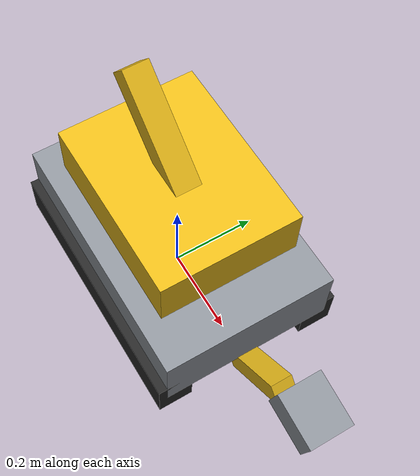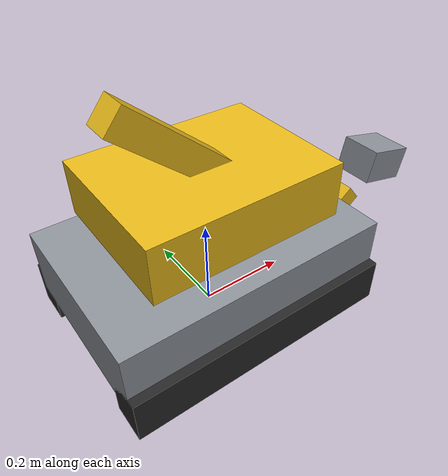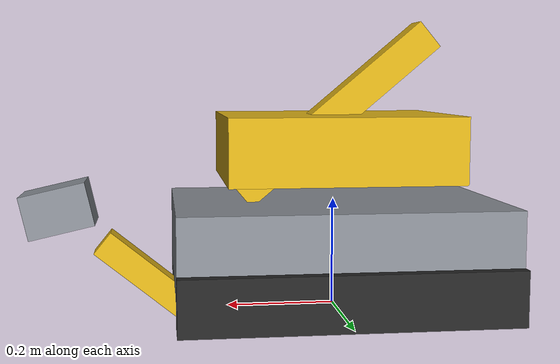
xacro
<?xml version="1.0"?>
<robot name="excavator" xmlns:xacro="http://www.ros.org/wiki/xacro">

  <!-- ==== MEASURE: chassis ==== -->
  <xacro:property name="chassis_length" value="0.60"/>   <!-- MEASURE m -->
  <xacro:property name="chassis_width"  value="0.40"/>   <!-- MEASURE m -->
  <xacro:property name="chassis_height" value="0.15"/>   <!-- MEASURE m -->
  <xacro:property name="ground_clearance" value="0.05"/> <!-- MEASURE m -->

  <!-- ==== MEASURE: tracks ==== -->
  <xacro:property name="track_length" value="0.60"/>     <!-- MEASURE m -->
  <xacro:property name="track_width"  value="0.08"/>     <!-- MEASURE m -->
  <xacro:property name="track_height" value="0.10"/>     <!-- MEASURE m -->
  <xacro:property name="track_separation" value="0.36"/> <!-- MEASURE m, centre-to-centre. Used by track odometry. -->

  <!-- ==== MEASURE: cab / swingdrive ==== -->
  <xacro:property name="cab_height" value="0.12"/>       <!-- MEASURE m -->
  <xacro:property name="cab_z_offset" value="0.10"/>     <!-- MEASURE m, chassis top to cab base -->

  <!-- ==== Arm: these are known (excavator_kinematics, cm -> m) ==== -->
  <xacro:property name="boom_length"   value="0.46"/>
  <xacro:property name="stick_length"  value="0.20"/>
  <xacro:property name="bucket_length" value="0.12"/>

  <!-- ==== MEASURE: camera mount, relative to cab_link ==== -->
  <xacro:property name="cam_x"     value="0.20"/>        <!-- MEASURE m, forward -->
  <xacro:property name="cam_y"     value="0.00"/>        <!-- MEASURE m, lateral -->
  <xacro:property name="cam_z"     value="0.25"/>        <!-- MEASURE m, up -->
  <xacro:property name="cam_pitch" value="0.26"/>        <!-- MEASURE rad, + = tilted DOWN. ~15 deg placeholder. -->

  <material name="steel"><color rgba="0.55 0.57 0.60 1.0"/></material>
  <material name="track_rubber"><color rgba="0.15 0.15 0.15 1.0"/></material>
  <material name="yellow"><color rgba="0.90 0.72 0.10 1.0"/></material>

  <xacro:macro name="box_link" params="name x y z material">
    <link name="${name}">
      <visual>
        <geometry><box size="${x} ${y} ${z}"/></geometry>
        <material name="${material}"/>
      </visual>
      <collision>
        <geometry><box size="${x} ${y} ${z}"/></geometry>
      </collision>
    </link>
  </xacro:macro>

  <!-- ============ base ============ -->
  <link name="base_footprint"/>

  <xacro:box_link name="base_link" x="${chassis_length}" y="${chassis_width}"
                  z="${chassis_height}" material="steel"/>

  <joint name="base_footprint_to_base_link" type="fixed">
    <parent link="base_footprint"/>
    <child  link="base_link"/>
    <origin xyz="0 0 ${ground_clearance + chassis_height/2}" rpy="0 0 0"/>
  </joint>

  <!-- ============ tracks ============ -->
  <xacro:box_link name="left_track_link" x="${track_length}" y="${track_width}"
                  z="${track_height}" material="track_rubber"/>
  <joint name="base_to_left_track" type="fixed">
    <parent link="base_link"/>
    <child  link="left_track_link"/>
    <origin xyz="0 ${track_separation/2} ${-chassis_height/2}" rpy="0 0 0"/>
  </joint>

  <xacro:box_link name="right_track_link" x="${track_length}" y="${track_width}"
                  z="${track_height}" material="track_rubber"/>
  <joint name="base_to_right_track" type="fixed">
    <parent link="base_link"/>
    <child  link="right_track_link"/>
    <origin xyz="0 ${-track_separation/2} ${-chassis_height/2}" rpy="0 0 0"/>
  </joint>

  <!-- ============ cab (swingdrive, LSS ID 2) ============ -->
  <xacro:box_link name="cab_link" x="${chassis_length*0.7}" y="${chassis_width*0.8}"
                  z="${cab_height}" material="yellow"/>
  <joint name="swing_joint" type="revolute">
    <parent link="base_link"/>
    <child  link="cab_link"/>
    <origin xyz="0 0 ${chassis_height/2 + cab_z_offset}" rpy="0 0 0"/>
    <axis xyz="0 0 1"/>
    <limit lower="-3.14159" upper="3.14159" effort="50" velocity="1.0"/>
  </joint>

  <xacro:box_link name="boom_link" x="${boom_length}" y="0.06" z="0.06" material="yellow"/>
  <joint name="boom_joint" type="revolute">
    <parent link="cab_link"/>
    <child  link="boom_link"/>
    <origin xyz="0 0 ${cab_height/2}" rpy="0 0 0"/>
    <axis xyz="0 1 0"/>
    <limit lower="0.349" upper="1.047" effort="100" velocity="0.5"/>  <!-- 20..60 deg -->
  </joint>

  <xacro:box_link name="stick_link" x="${stick_length}" y="0.05" z="0.05" material="yellow"/>
  <joint name="stick_joint" type="revolute">
    <parent link="boom_link"/>
    <child  link="stick_link"/>
    <origin xyz="${boom_length} 0 0" rpy="0 0 0"/>
    <axis xyz="0 1 0"/>
    <limit lower="-2.094" upper="-0.663" effort="100" velocity="0.5"/> <!-- -120..-38 deg -->
  </joint>

  <xacro:box_link name="bucket_link" x="${bucket_length}" y="0.10" z="0.08" material="steel"/>
  <joint name="bucket_joint" type="revolute">
    <parent link="stick_link"/>
    <child  link="bucket_link"/>
    <origin xyz="${stick_length} 0 0" rpy="0 0 0"/>
    <axis xyz="0 1 0"/>
    <limit lower="-3.695" upper="-0.785" effort="100" velocity="0.5"/> <!-- -211.7..-45 deg -->
  </joint>

  <!-- Arm base frame: origin of the IK solve, for the depth-slice dig target. -->
  <link name="arm_base_frame"/>
  <joint name="cab_to_arm_base" type="fixed">
    <parent link="cab_link"/>
    <child  link="arm_base_frame"/>
    <origin xyz="0 0 ${cab_height/2}" rpy="0 0 0"/>
  </joint>

  <!-- ============ camera ============ -->
  <link name="camera_link"/>
  <joint name="cab_to_camera" type="fixed">
    <parent link="cab_link"/>
    <child  link="camera_link"/>
    <origin xyz="${cam_x} ${cam_y} ${cam_z}" rpy="0 ${cam_pitch} 0"/>
  </joint>

  <!-- REP-103 optical frame: z forward, x right, y down. realsense2_camera
       publishes its own internal frames below this one. -->
  <link name="camera_link_optical"/>
  <joint name="camera_to_optical" type="fixed">
    <parent link="camera_link"/>
    <child  link="camera_link_optical"/>
    <origin xyz="0 0 0" rpy="${-pi/2} 0 ${-pi/2}"/>
  </joint>

</robot>
